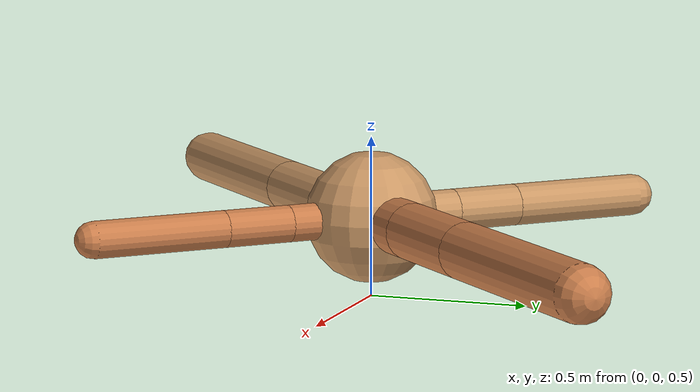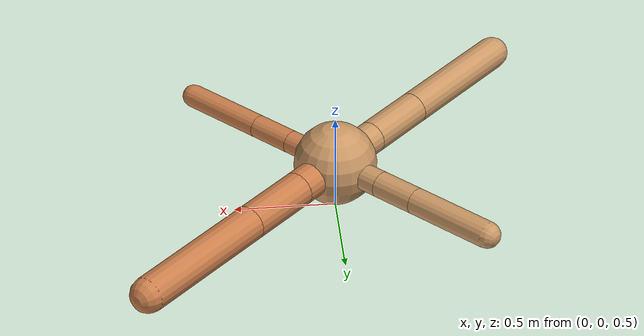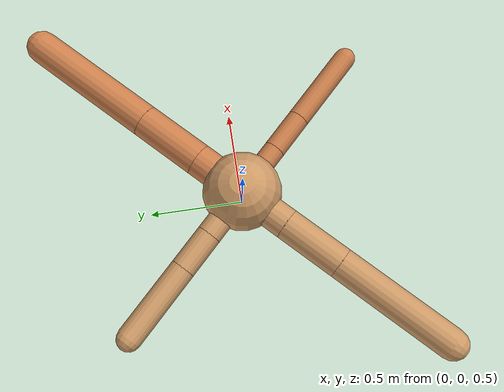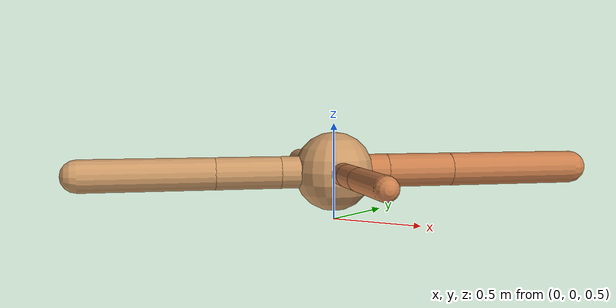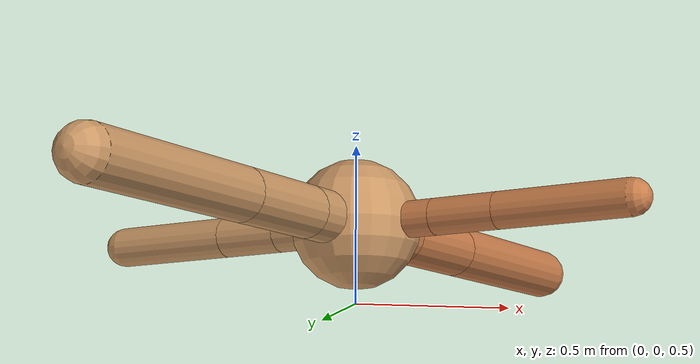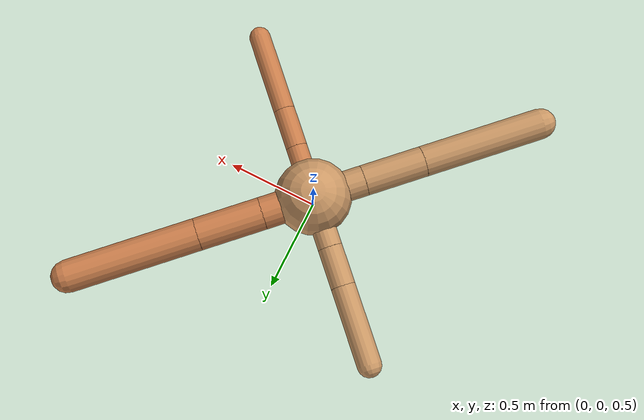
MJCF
<?xml version="1.0" ?>
<mujoco model="ant">

	<compiler angle="degree" coordinate="local" inertiafromgeom="true"/>

	<option integrator="RK4" timestep="0.01"/>

	<custom>

		<numeric data="0.0 0.0 0.55 1.0 0.0 0.0 0.0 0.0 1.0 0.0 -1.0 0.0 -1.0 0.0 1.0" name="init_qpos"/>

	</custom>

	<default>

		<joint armature="1" damping="1" limited="true"/>

		<geom conaffinity="0" condim="3" density="5.0" friction="1.5 0.1 0.1" margin="0.01" rgba="0.8 0.6 0.4 1"/>

	</default>

	<worldbody>

		<body name="torso" pos="0 0 0.75">

			<geom name="torso_geom" pos="0 0 0" size="0.20522690223460094" type="sphere"/>

			<!--joint armature="0" damping="0" limited="false" margin="0.01" name="root" pos="0 0 0" type="free"/-->

			<body name="front_left_leg" pos="0 0 0">

				<geom fromto="0 0 0 0.2 0.2 0" name="aux_1_geom" size="0.08753770074944134" type="capsule" rgba=".8 .5 .3 1"/>

				<body name="aux_1" pos="0.2 0.2 0">

					<joint axis="0 0 1" name="hip_1" pos="0.0 0.0 0.0" range="-40 40" type="hinge"/>

					<geom fromto="0 0 0 0.2510097718815339 0.2510097718815339 0" name="left_leg_geom" size="0.08753770074944134" type="capsule" rgba=".8 .5 .3 1"/>

					<body pos="0.2510097718815339 0.2510097718815339 0" name="front_left_foot">

						<joint axis="-1 1 0" name="ankle_1" pos="0.0 0.0 0.0" range="30 100" type="hinge"/>

						<geom fromto="0 0 0 0.5020195437630678 0.5020195437630678 0" name="left_ankle_geom" size="0.08753770074944134" type="capsule" rgba=".8 .5 .3 1"/>

					</body>

				</body>

			</body>

			<body name="front_right_leg" pos="0 0 0">

				<geom fromto="0 0 0 -0.2 0.2 0" name="aux_2_geom" size="0.06527708866964957" type="capsule"/>

				<body name="aux_2" pos="-0.2 0.2 0">

					<joint axis="0 0 1" name="hip_2" pos="0.0 0.0 0.0" range="-40 40" type="hinge"/>

					<geom fromto="0 0 0 -0.15107998312063076 0.15107998312063076 0" name="right_leg_geom" size="0.06527708866964957" type="capsule"/>

					<body pos="-0.15107998312063076 0.15107998312063076 0" name="front_right_foot">

						<joint axis="1 1 0" name="ankle_2" pos="0.0 0.0 0.0" range="-100 -30" type="hinge"/>

						<geom fromto="0 0 0 -0.3021599662412615 0.3021599662412615 0" name="right_ankle_geom" size="0.06527708866964957" type="capsule"/>

					</body>

				</body>

			</body>

			<body name="left_back_leg" pos="0 0 0">

				<geom fromto="0 0 0 -0.2 -0.2 0" name="aux_3_geom" size="0.08220033005487506" type="capsule"/>

				<body name="aux_3" pos="-0.2 -0.2 0">

					<joint axis="0 0 1" name="hip_3" pos="0.0 0.0 0.0" range="-40 40" type="hinge"/>

					<geom fromto="0 0 0 -0.23427048774244216 -0.23427048774244216 0" name="back_leg_geom" size="0.08220033005487506" type="capsule"/>

					<body pos="-0.23427048774244216 -0.23427048774244216 0" name="left_back_foot">

						<joint axis="-1 1 0" name="ankle_3" pos="0.0 0.0 0.0" range="-100 -30" type="hinge"/>

						<geom fromto="0 0 0 -0.4685409754848843 -0.4685409754848843 0" name="third_ankle_geom" size="0.08220033005487506" type="capsule"/>

					</body>

				</body>

			</body>

			<body name="right_back_leg" pos="0 0 0">

				<geom fromto="0 0 0 0.2 -0.2 0" name="aux_4_geom" size="0.05716569563729184" type="capsule" rgba=".8 .5 .3 1"/>

				<body name="aux_4" pos="0.2 -0.2 0">

					<joint axis="0 0 1" name="hip_4" pos="0.0 0.0 0.0" range="-40 40" type="hinge"/>

					<geom fromto="0 0 0 0.1511274928898162 -0.1511274928898162 0" name="rightback_leg_geom" size="0.05716569563729184" type="capsule" rgba=".8 .5 .3 1"/>

					<body pos="0.1511274928898162 -0.1511274928898162 0" name="right_back_foot">

						<joint axis="1 1 0" name="ankle_4" pos="0.0 0.0 0.0" range="30 100" type="hinge"/>

						<geom fromto="0 0 0 0.3022549857796324 -0.3022549857796324 0" name="fourth_ankle_geom" size="0.05716569563729184" type="capsule" rgba=".8 .5 .3 1"/>

					</body>

				</body>

			</body>

		</body>

	</worldbody>

	<actuator>

		<motor ctrllimited="true" ctrlrange="-1.0 1.0" joint="hip_4" gear="150"/>

		<motor ctrllimited="true" ctrlrange="-1.0 1.0" joint="ankle_4" gear="150"/>

		<motor ctrllimited="true" ctrlrange="-1.0 1.0" joint="hip_1" gear="150"/>

		<motor ctrllimited="true" ctrlrange="-1.0 1.0" joint="ankle_1" gear="150"/>

		<motor ctrllimited="true" ctrlrange="-1.0 1.0" joint="hip_2" gear="150"/>

		<motor ctrllimited="true" ctrlrange="-1.0 1.0" joint="ankle_2" gear="150"/>

		<motor ctrllimited="true" ctrlrange="-1.0 1.0" joint="hip_3" gear="150"/>

		<motor ctrllimited="true" ctrlrange="-1.0 1.0" joint="ankle_3" gear="150"/>

	</actuator>

</mujoco>
